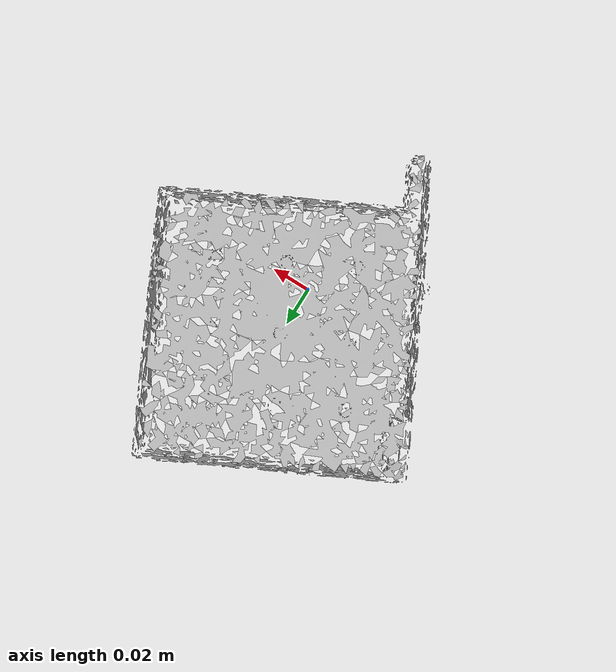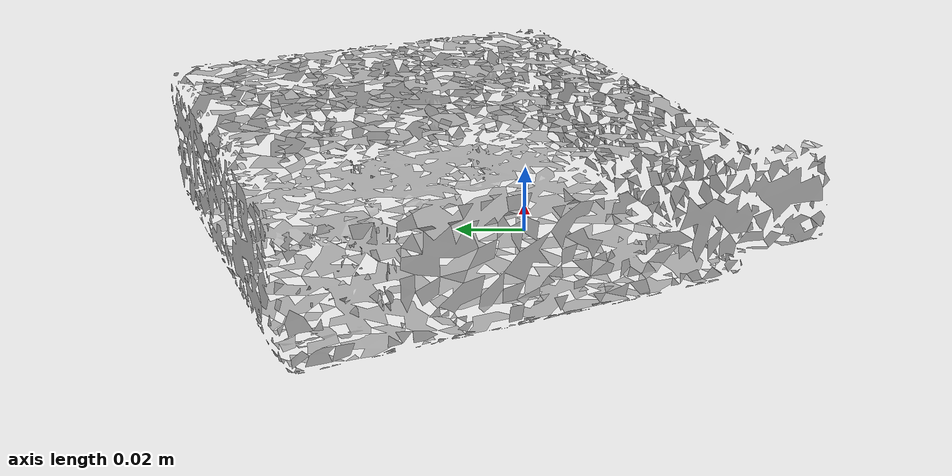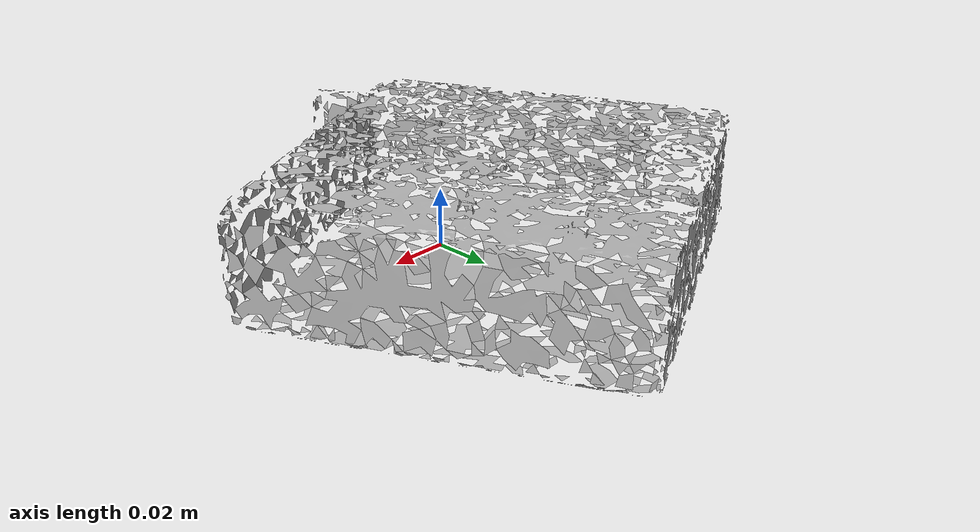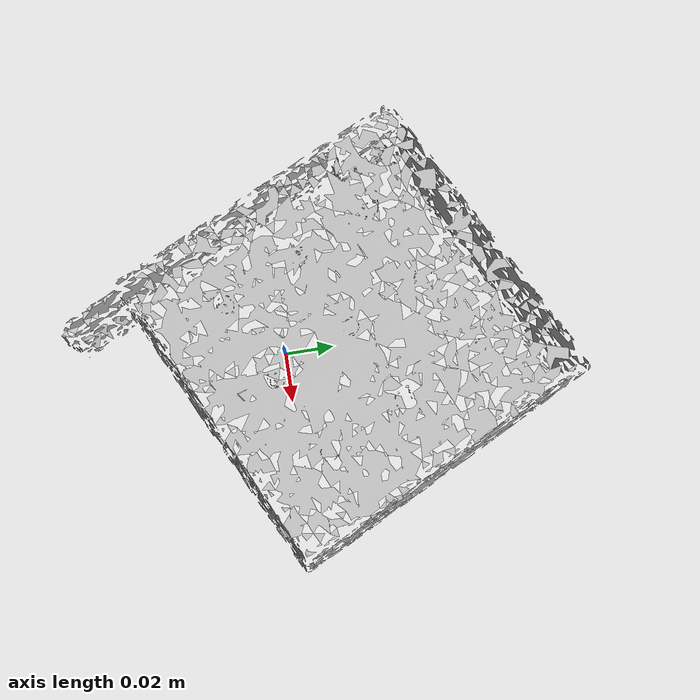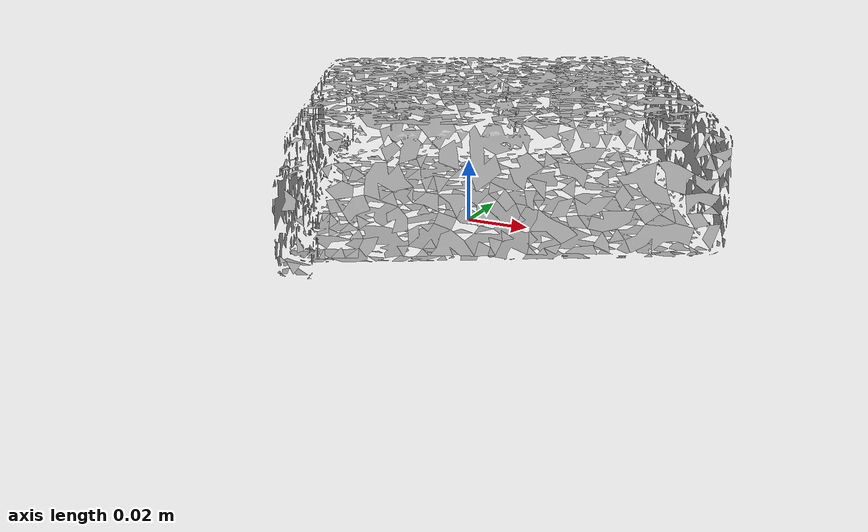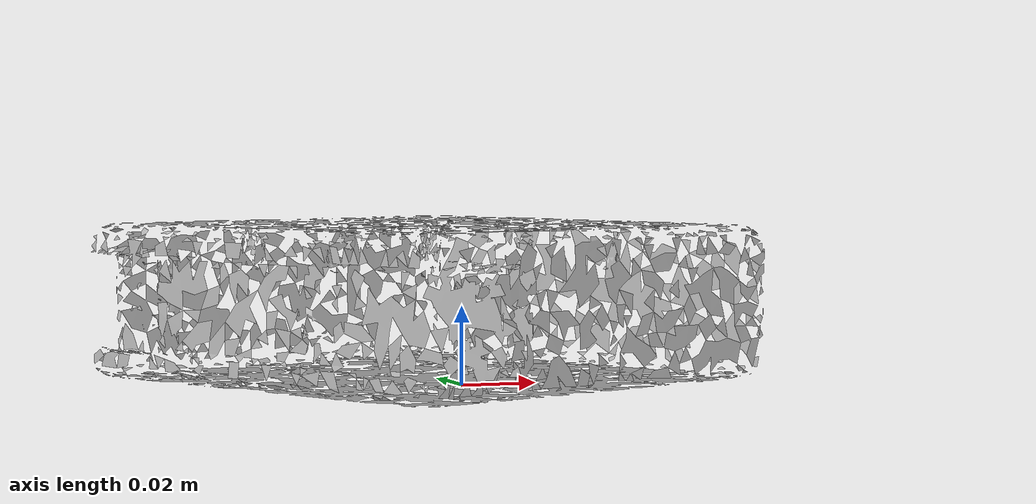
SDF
<?xml version='1.0'?>
<sdf version="1.4">
  <model name="nine_hole_peg_test">
    <static>false</static>
    <link name="link">
      <inertial>
        <pose>-0.000188539225942058 0.024373721273276618 0.019952866039031774 -0.573192054832987 -1.5682548118819548 -1.2142461506381574</pose>
        <mass>1.435</mass>
        <inertia>
          <ixx>1.6556355079461083e-06</ixx>
          <ixy>4.239371022483215e-24</ixy>
          <ixz>5.0692044608912555e-24</ixz>
          <iyy>9.576057723576263e-07</iyy>
          <iyz>-1.329328259014097e-23</iyz>
          <izz>8.65277925286308e-07</izz>
        </inertia>
      </inertial>
      <collision name="collision">
        <geometry>
          <mesh>
            <!-- Use a downsampled mesh for collisions -->
            <uri>model://071_nine_hole_peg_test/downsampled.obj</uri>
	        </mesh>
        </geometry>
        <surface>
          <friction>
            <ode>
              <mu>0.8</mu>
              <mu2>0.6</mu2>
            </ode>
          </friction>
        </surface>
      </collision>
      <visual name="visual">
        <geometry>
          <mesh>
            <uri>model://071_nine_hole_peg_test/google_16k/textured.obj</uri>
	        </mesh>
        </geometry>
        <material>
          <script>
            <uri>model://071_nine_hole_peg_test/nine_hole_peg_test.material</uri>
            <name>nine_hole_peg_test</name>
          </script>
        </material>
      </visual>
    </link>
  </model>
</sdf>
